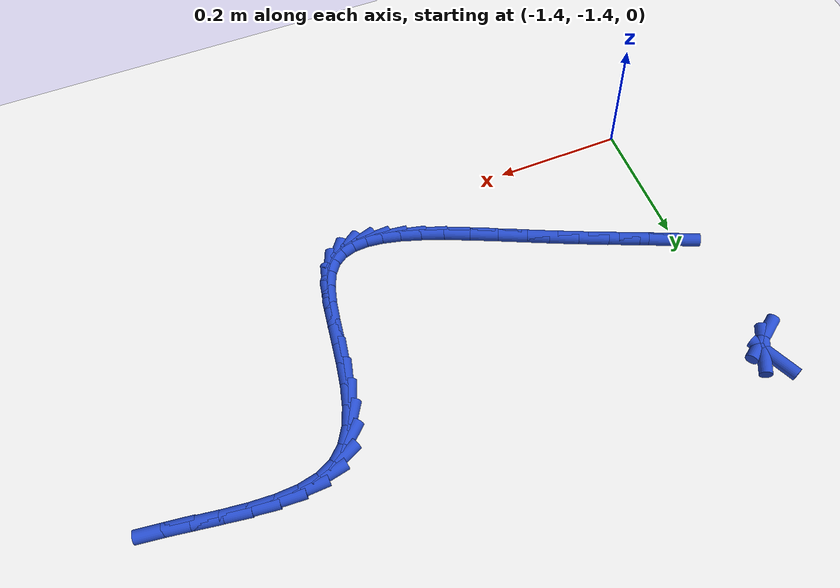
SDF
<sdf version="1.6">
 <world name="default">
  <model name="ground_plane">
   <static>1</static>
   <link name="link">
    <collision name="collision">
     <geometry><plane><normal>0 0 1</normal><size>100 100</size></plane></geometry>
     <surface><friction><ode><mu>100</mu><mu2>50</mu2></ode></friction></surface>
    </collision>
    <visual name="visual">
     <cast_shadows>0</cast_shadows>
     <geometry><plane><normal>0 0 1</normal><size>100 100</size></plane></geometry>
     <material>
      <script><uri>file://media/materials/scripts/gazebo.material</uri><name>Gazebo/WhiteGlow</name></script>
     </material>
    </visual>
   </link>
  </model>
  <model name="line">
   <link name="link_199">
    <pose>-1.431122663854592 -0.9392173242367424 0.01 0 1.57 -1.146511710849378</pose>
    <collision name="collision">
     <geometry><cylinder><radius>0.01</radius><length>0.08</length></cylinder></geometry>
    </collision>
    <visual name="visual">
     <material>
      <script><name>Gazebo/Blue</name><uri>file://media/materials/scripts/gazebo.material</uri></script>
     </material>
     <geometry><cylinder><radius>0.01</radius><length>0.08</length></cylinder></geometry>
    </visual>
   </link>
   <link name="link_200">
    <pose>-1.4236738109297726 -0.9557072471071693 0.01 0 1.57 1.1084318125111274</pose>
    <collision name="collision">
     <geometry><cylinder><radius>0.01</radius><length>0.08</length></cylinder></geometry>
    </collision>
    <visual name="visual">
     <material>
      <script><name>Gazebo/Blue</name><uri>file://media/materials/scripts/gazebo.material</uri></script>
     </material>
     <geometry><cylinder><radius>0.01</radius><length>0.08</length></cylinder></geometry>
    </visual>
   </link>
   <link name="link_201">
    <pose>-1.431758849388282 -0.9719293268525003 0.01 0 1.57 0.6187890976652971</pose>
    <collision name="collision">
     <geometry><cylinder><radius>0.01</radius><length>0.08</length></cylinder></geometry>
    </collision>
    <visual name="visual">
     <material>
      <script><name>Gazebo/Blue</name><uri>file://media/materials/scripts/gazebo.material</uri></script>
     </material>
     <geometry><cylinder><radius>0.01</radius><length>0.08</length></cylinder></geometry>
    </visual>
   </link>
   <link name="link_213">
    <pose>-1.3952817944869258 -1.1753463946279528 0.01 0 1.57 -0.4152069991296888</pose>
    <collision name="collision">
     <geometry><cylinder><radius>0.01</radius><length>0.08</length></cylinder></geometry>
    </collision>
    <visual name="visual">
     <material>
      <script><name>Gazebo/Blue</name><uri>file://media/materials/scripts/gazebo.material</uri></script>
     </material>
     <geometry><cylinder><radius>0.01</radius><length>0.08</length></cylinder></geometry>
    </visual>
   </link>
   <link name="link_214">
    <pose>-1.352979505922536 -1.1939947631920353 0.01 0 1.57 -0.4083463092148193</pose>
    <collision name="collision">
     <geometry><cylinder><radius>0.01</radius><length>0.08</length></cylinder></geometry>
    </collision>
    <visual name="visual">
     <material>
      <script><name>Gazebo/Blue</name><uri>file://media/materials/scripts/gazebo.material</uri></script>
     </material>
     <geometry><cylinder><radius>0.01</radius><length>0.08</length></cylinder></geometry>
    </visual>
   </link>
   <link name="link_215">
    <pose>-1.3093248243474378 -1.2128826829990176 0.01 0 1.57 -0.4116723181110882</pose>
    <collision name="collision">
     <geometry><cylinder><radius>0.01</radius><length>0.08</length></cylinder></geometry>
    </collision>
    <visual name="visual">
     <material>
      <script><name>Gazebo/Blue</name><uri>file://media/materials/scripts/gazebo.material</uri></script>
     </material>
     <geometry><cylinder><radius>0.01</radius><length>0.08</length></cylinder></geometry>
    </visual>
   </link>
   <link name="link_216">
    <pose>-1.265536707119746 -1.2320014892239368 0.01 0 1.57 -0.4238319688148669</pose>
    <collision name="collision">
     <geometry><cylinder><radius>0.01</radius><length>0.08</length></cylinder></geometry>
    </collision>
    <visual name="visual">
     <material>
      <script><name>Gazebo/Blue</name><uri>file://media/materials/scripts/gazebo.material</uri></script>
     </material>
     <geometry><cylinder><radius>0.01</radius><length>0.08</length></cylinder></geometry>
    </visual>
   </link>
   <link name="link_217">
    <pose>-1.222755522206223 -1.251303359399694 0.01 0 1.57 -0.43377249648432026</pose>
    <collision name="collision">
     <geometry><cylinder><radius>0.01</radius><length>0.08</length></cylinder></geometry>
    </collision>
    <visual name="visual">
     <material>
      <script><name>Gazebo/Blue</name><uri>file://media/materials/scripts/gazebo.material</uri></script>
     </material>
     <geometry><cylinder><radius>0.01</radius><length>0.08</length></cylinder></geometry>
    </visual>
   </link>
   <link name="link_218">
    <pose>-1.1814812492117321 -1.270421393663703 0.01 0 1.57 -0.43540982079369844</pose>
    <collision name="collision">
     <geometry><cylinder><radius>0.01</radius><length>0.08</length></cylinder></geometry>
    </collision>
    <visual name="visual">
     <material>
      <script><name>Gazebo/Blue</name><uri>file://media/materials/scripts/gazebo.material</uri></script>
     </material>
     <geometry><cylinder><radius>0.01</radius><length>0.08</length></cylinder></geometry>
    </visual>
   </link>
   <link name="link_219">
    <pose>-1.1419017580517725 -1.2888331816027303 0.01 0 1.57 -0.42764280630293905</pose>
    <collision name="collision">
     <geometry><cylinder><radius>0.01</radius><length>0.08</length></cylinder></geometry>
    </collision>
    <visual name="visual">
     <material>
      <script><name>Gazebo/Blue</name><uri>file://media/materials/scripts/gazebo.material</uri></script>
     </material>
     <geometry><cylinder><radius>0.01</radius><length>0.08</length></cylinder></geometry>
    </visual>
   </link>
   <link name="link_220">
    <pose>-1.1042028213346011 -1.3060152678074561 0.01 0 1.57 -0.4086273732050287</pose>
    <collision name="collision">
     <geometry><cylinder><radius>0.01</radius><length>0.08</length></cylinder></geometry>
    </collision>
    <visual name="visual">
     <material>
      <script><name>Gazebo/Blue</name><uri>file://media/materials/scripts/gazebo.material</uri></script>
     </material>
     <geometry><cylinder><radius>0.01</radius><length>0.08</length></cylinder></geometry>
    </visual>
   </link>
   <link name="link_221">
    <pose>-1.0685702116684759 -1.3214441968685602 0.01 0 1.57 -0.3753335437702235</pose>
    <collision name="collision">
     <geometry><cylinder><radius>0.01</radius><length>0.08</length></cylinder></geometry>
    </collision>
    <visual name="visual">
     <material>
      <script><name>Gazebo/Blue</name><uri>file://media/materials/scripts/gazebo.material</uri></script>
     </material>
     <geometry><cylinder><radius>0.01</radius><length>0.08</length></cylinder></geometry>
    </visual>
   </link>
   <link name="link_222">
    <pose>-1.0351897016616542 -1.334596513376724 0.01 0 1.57 -0.3228564632261553</pose>
    <collision name="collision">
     <geometry><cylinder><radius>0.01</radius><length>0.08</length></cylinder></geometry>
    </collision>
    <visual name="visual">
     <material>
      <script><name>Gazebo/Blue</name><uri>file://media/materials/scripts/gazebo.material</uri></script>
     </material>
     <geometry><cylinder><radius>0.01</radius><length>0.08</length></cylinder></geometry>
    </visual>
   </link>
   <link name="link_223">
    <pose>-1.0042470639223933 -1.3449487619226257 0.01 0 1.57 -0.24328220425130204</pose>
    <collision name="collision">
     <geometry><cylinder><radius>0.01</radius><length>0.08</length></cylinder></geometry>
    </collision>
    <visual name="visual">
     <material>
      <script><name>Gazebo/Blue</name><uri>file://media/materials/scripts/gazebo.material</uri></script>
     </material>
     <geometry><cylinder><radius>0.01</radius><length>0.08</length></cylinder></geometry>
    </visual>
   </link>
   <link name="link_224">
    <pose>-0.975928071058951 -1.351977487096947 0.01 0 1.57 -0.12408670991152787</pose>
    <collision name="collision">
     <geometry><cylinder><radius>0.01</radius><length>0.08</length></cylinder></geometry>
    </collision>
    <visual name="visual">
     <material>
      <script><name>Gazebo/Blue</name><uri>file://media/materials/scripts/gazebo.material</uri></script>
     </material>
     <geometry><cylinder><radius>0.01</radius><length>0.08</length></cylinder></geometry>
    </visual>
   </link>
   <link name="link_225">
    <pose>-0.9504184956795845 -1.3551592334903666 0.01 0 1.57 0.0527478380950472</pose>
    <collision name="collision">
     <geometry><cylinder><radius>0.01</radius><length>0.08</length></cylinder></geometry>
    </collision>
    <visual name="visual">
     <material>
      <script><name>Gazebo/Blue</name><uri>file://media/materials/scripts/gazebo.material</uri></script>
     </material>
     <geometry><cylinder><radius>0.01</radius><length>0.08</length></cylinder></geometry>
    </visual>
   </link>
   <link name="link_226">
    <pose>-0.9279041103925515 -1.3539705456935662 0.01 0 1.57 0.30481019325698905</pose>
    <collision name="collision">
     <geometry><cylinder><radius>0.01</radius><length>0.08</length></cylinder></geometry>
    </collision>
    <visual name="visual">
     <material>
      <script><name>Gazebo/Blue</name><uri>file://media/materials/scripts/gazebo.material</uri></script>
     </material>
     <geometry><cylinder><radius>0.01</radius><length>0.08</length></cylinder></geometry>
    </visual>
   </link>
   <link name="link_227">
    <pose>-0.9085706878061094 -1.3478879682972245 0.01 0 1.57 0.6241842120769626</pose>
    <collision name="collision">
     <geometry><cylinder><radius>0.01</radius><length>0.08</length></cylinder></geometry>
    </collision>
    <visual name="visual">
     <material>
      <script><name>Gazebo/Blue</name><uri>file://media/materials/scripts/gazebo.material</uri></script>
     </material>
     <geometry><cylinder><radius>0.01</radius><length>0.08</length></cylinder></geometry>
    </visual>
   </link>
   <link name="link_228">
    <pose>-0.8926040005285155 -1.336388045892022 0.01 0 1.57 0.95216582365858</pose>
    <collision name="collision">
     <geometry><cylinder><radius>0.01</radius><length>0.08</length></cylinder></geometry>
    </collision>
    <visual name="visual">
     <material>
      <script><name>Gazebo/Blue</name><uri>file://media/materials/scripts/gazebo.material</uri></script>
     </material>
     <geometry><cylinder><radius>0.01</radius><length>0.08</length></cylinder></geometry>
    </visual>
   </link>
   <link name="link_229">
    <pose>-0.8801894140313892 -1.318947996544332 0.01 0 1.57 1.2064130169731693</pose>
    <collision name="collision">
     <geometry><cylinder><radius>0.01</radius><length>0.08</length></cylinder></geometry>
    </collision>
    <visual name="visual">
     <material>
      <script><name>Gazebo/Blue</name><uri>file://media/materials/scripts/gazebo.material</uri></script>
     </material>
     <geometry><cylinder><radius>0.01</radius><length>0.08</length></cylinder></geometry>
    </visual>
   </link>
   <link name="link_230">
    <pose>-0.8712426079933387 -1.2954911461114622 0.01 0 1.57 1.352026419905505</pose>
    <collision name="collision">
     <geometry><cylinder><radius>0.01</radius><length>0.08</length></cylinder></geometry>
    </collision>
    <visual name="visual">
     <material>
      <script><name>Gazebo/Blue</name><uri>file://media/materials/scripts/gazebo.material</uri></script>
     </material>
     <geometry><cylinder><radius>0.01</radius><length>0.08</length></cylinder></geometry>
    </visual>
   </link>
   <link name="link_231">
    <pose>-0.8649433752066068 -1.2671581069439761 0.01 0 1.57 1.4275344501307592</pose>
    <collision name="collision">
     <geometry><cylinder><radius>0.01</radius><length>0.08</length></cylinder></geometry>
    </collision>
    <visual name="visual">
     <material>
      <script><name>Gazebo/Blue</name><uri>file://media/materials/scripts/gazebo.material</uri></script>
     </material>
     <geometry><cylinder><radius>0.01</radius><length>0.08</length></cylinder></geometry>
    </visual>
   </link>
   <link name="link_232">
    <pose>-0.8603471486274706 -1.2352952044597947 0.01 0 1.57 1.4585480120265337</pose>
    <collision name="collision">
     <geometry><cylinder><radius>0.01</radius><length>0.08</length></cylinder></geometry>
    </collision>
    <visual name="visual">
     <material>
      <script><name>Gazebo/Blue</name><uri>file://media/materials/scripts/gazebo.material</uri></script>
     </material>
     <geometry><cylinder><radius>0.01</radius><length>0.08</length></cylinder></geometry>
    </visual>
   </link>
   <link name="link_233">
    <pose>-0.856509361212208 -1.2012487640768421 0.01 0 1.57 1.455951450905815</pose>
    <collision name="collision">
     <geometry><cylinder><radius>0.01</radius><length>0.08</length></cylinder></geometry>
    </collision>
    <visual name="visual">
     <material>
      <script><name>Gazebo/Blue</name><uri>file://media/materials/scripts/gazebo.material</uri></script>
     </material>
     <geometry><cylinder><radius>0.01</radius><length>0.08</length></cylinder></geometry>
    </visual>
   </link>
   <link name="link_234">
    <pose>-0.8524854459170954 -1.1663651112130369 0.01 0 1.57 1.4219510697033773</pose>
    <collision name="collision">
     <geometry><cylinder><radius>0.01</radius><length>0.08</length></cylinder></geometry>
    </collision>
    <visual name="visual">
     <material>
      <script><name>Gazebo/Blue</name><uri>file://media/materials/scripts/gazebo.material</uri></script>
     </material>
     <geometry><cylinder><radius>0.01</radius><length>0.08</length></cylinder></geometry>
    </visual>
   </link>
   <link name="link_235">
    <pose>-0.847330835698411 -1.1319905712863023 0.01 0 1.57 1.3520275978820724</pose>
    <collision name="collision">
     <geometry><cylinder><radius>0.01</radius><length>0.08</length></cylinder></geometry>
    </collision>
    <visual name="visual">
     <material>
      <script><name>Gazebo/Blue</name><uri>file://media/materials/scripts/gazebo.material</uri></script>
     </material>
     <geometry><cylinder><radius>0.01</radius><length>0.08</length></cylinder></geometry>
    </visual>
   </link>
   <link name="link_236">
    <pose>-0.8401009635124321 -1.0994714697145604 0.01 0 1.57 1.2344669602056797</pose>
    <collision name="collision">
     <geometry><cylinder><radius>0.01</radius><length>0.08</length></cylinder></geometry>
    </collision>
    <visual name="visual">
     <material>
      <script><name>Gazebo/Blue</name><uri>file://media/materials/scripts/gazebo.material</uri></script>
     </material>
     <geometry><cylinder><radius>0.01</radius><length>0.08</length></cylinder></geometry>
    </visual>
   </link>
   <link name="link_237">
    <pose>-0.829851262315436 -1.0701541319157328 0.01 0 1.57 1.0498187158907777</pose>
    <collision name="collision">
     <geometry><cylinder><radius>0.01</radius><length>0.08</length></cylinder></geometry>
    </collision>
    <visual name="visual">
     <material>
      <script><name>Gazebo/Blue</name><uri>file://media/materials/scripts/gazebo.material</uri></script>
     </material>
     <geometry><cylinder><radius>0.01</radius><length>0.08</length></cylinder></geometry>
    </visual>
   </link>
   <link name="link_238">
    <pose>-0.8156371650637005 -1.045384883307742 0.01 0 1.57 0.7788661798225222</pose>
    <collision name="collision">
     <geometry><cylinder><radius>0.01</radius><length>0.08</length></cylinder></geometry>
    </collision>
    <visual name="visual">
     <material>
      <script><name>Gazebo/Blue</name><uri>file://media/materials/scripts/gazebo.material</uri></script>
     </material>
     <geometry><cylinder><radius>0.01</radius><length>0.08</length></cylinder></geometry>
    </visual>
   </link>
   <link name="link_239">
    <pose>-0.7965141141831614 -1.0265100375936913 0.01 0 1.57 0.456998251073171</pose>
    <collision name="collision">
     <geometry><cylinder><radius>0.01</radius><length>0.08</length></cylinder></geometry>
    </collision>
    <visual name="visual">
     <material>
      <script><name>Gazebo/Blue</name><uri>file://media/materials/scripts/gazebo.material</uri></script>
     </material>
     <geometry><cylinder><radius>0.01</radius><length>0.08</length></cylinder></geometry>
    </visual>
   </link>
   <link name="link_240">
    <pose>-0.7719119373025521 -1.0144127604000464 0.01 0 1.57 0.20630676781364765</pose>
    <collision name="collision">
     <geometry><cylinder><radius>0.01</radius><length>0.08</length></cylinder></geometry>
    </collision>
    <visual name="visual">
     <material>
      <script><name>Gazebo/Blue</name><uri>file://media/materials/scripts/gazebo.material</uri></script>
     </material>
     <geometry><cylinder><radius>0.01</radius><length>0.08</length></cylinder></geometry>
    </visual>
   </link>
   <link name="link_241">
    <pose>-0.7426282506511911 -1.0082841401694522 0.01 0 1.57 0.04122377177704344</pose>
    <collision name="collision">
     <geometry><cylinder><radius>0.01</radius><length>0.08</length></cylinder></geometry>
    </collision>
    <visual name="visual">
     <material>
      <script><name>Gazebo/Blue</name><uri>file://media/materials/scripts/gazebo.material</uri></script>
     </material>
     <geometry><cylinder><radius>0.01</radius><length>0.08</length></cylinder></geometry>
    </visual>
   </link>
   <link name="link_242">
    <pose>-0.7097729457309713 -1.0069289528226004 0.01 0 1.57 -0.06286180946462046</pose>
    <collision name="collision">
     <geometry><cylinder><radius>0.01</radius><length>0.08</length></cylinder></geometry>
    </collision>
    <visual name="visual">
     <material>
      <script><name>Gazebo/Blue</name><uri>file://media/materials/scripts/gazebo.material</uri></script>
     </material>
     <geometry><cylinder><radius>0.01</radius><length>0.08</length></cylinder></geometry>
    </visual>
   </link>
   <link name="link_243">
    <pose>-0.6744559140437854 -1.009151974280182 0.01 0 1.57 -0.12495636495520934</pose>
    <collision name="collision">
     <geometry><cylinder><radius>0.01</radius><length>0.08</length></cylinder></geometry>
    </collision>
    <visual name="visual">
     <material>
      <script><name>Gazebo/Blue</name><uri>file://media/materials/scripts/gazebo.material</uri></script>
     </material>
     <geometry><cylinder><radius>0.01</radius><length>0.08</length></cylinder></geometry>
    </visual>
   </link>
   <link name="link_244">
    <pose>-0.6377870470915263 -1.0137579804628882 0.01 0 1.57 -0.15569624978344418</pose>
    <collision name="collision">
     <geometry><cylinder><radius>0.01</radius><length>0.08</length></cylinder></geometry>
    </collision>
    <visual name="visual">
     <material>
      <script><name>Gazebo/Blue</name><uri>file://media/materials/scripts/gazebo.material</uri></script>
     </material>
     <geometry><cylinder><radius>0.01</radius><length>0.08</length></cylinder></geometry>
    </visual>
   </link>
   <link name="link_245">
    <pose>-0.6008762363760864 -1.0195517472914102 0.01 0 1.57 -0.15918125666118257</pose>
    <collision name="collision">
     <geometry><cylinder><radius>0.01</radius><length>0.08</length></cylinder></geometry>
    </collision>
    <visual name="visual">
     <material>
      <script><name>Gazebo/Blue</name><uri>file://media/materials/scripts/gazebo.material</uri></script>
     </material>
     <geometry><cylinder><radius>0.01</radius><length>0.08</length></cylinder></geometry>
    </visual>
   </link>
   <link name="link_246">
    <pose>-0.5648333733993591 -1.0253380506864394 0.01 0 1.57 -0.1337515695098784</pose>
    <collision name="collision">
     <geometry><cylinder><radius>0.01</radius><length>0.08</length></cylinder></geometry>
    </collision>
    <visual name="visual">
     <material>
      <script><name>Gazebo/Blue</name><uri>file://media/materials/scripts/gazebo.material</uri></script>
     </material>
     <geometry><cylinder><radius>0.01</radius><length>0.08</length></cylinder></geometry>
    </visual>
   </link>
  </model>
 </world>
</sdf>
